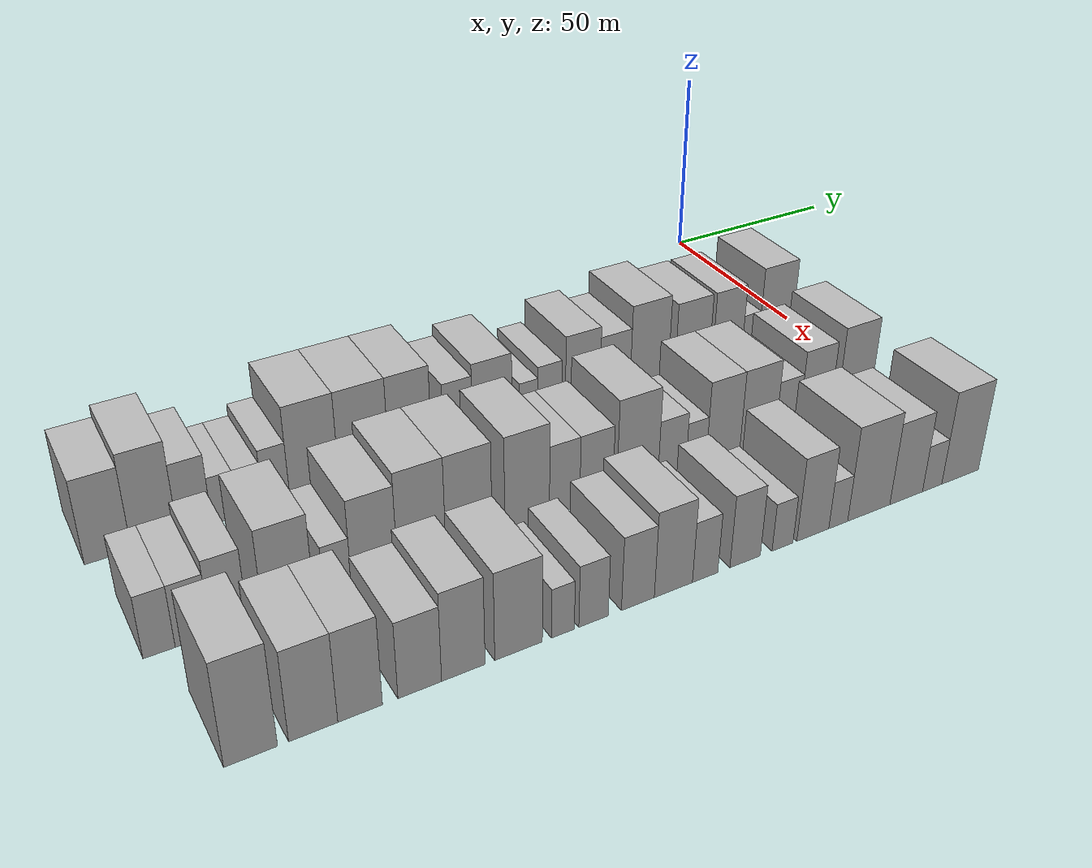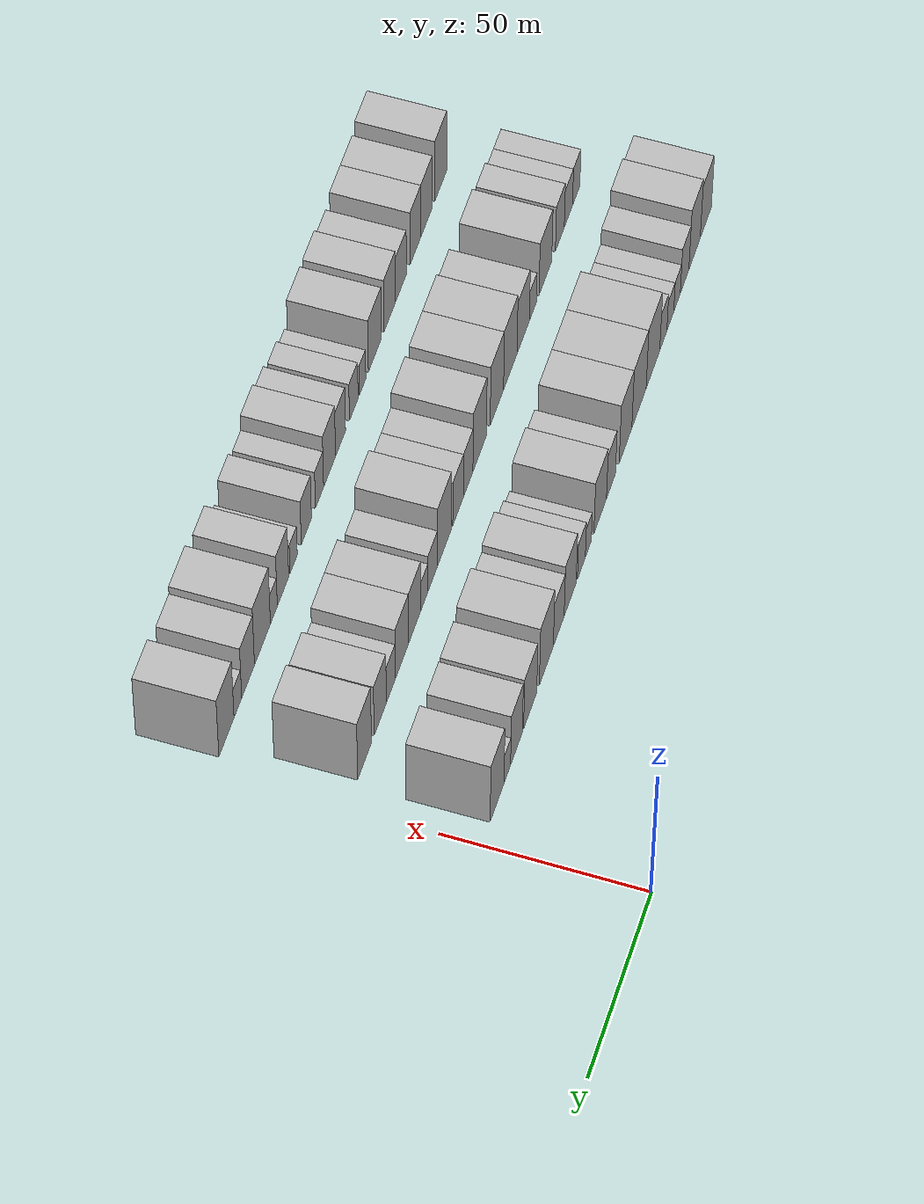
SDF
<sdf version="1.6">
 <world name="default">
  <model name="building_20">
   <static>1</static>
   <pose>50.0000 -181.8742 0 0.000000 0.000000 0.000000</pose>
   <link name="link">
    <pose>0 0 10.50 0 0 0</pose>
    <collision name="collision"><geometry><box><size>20.0000 9.5747 21.0000</size></box></geometry></collision>
    <visual name="visual">
     <cast_shadows>0</cast_shadows>
     <geometry><box><size>20.0000 9.5747 21.0000</size></box></geometry>
     <material>
      <script>
       <uri>model://HANNAS_wall/materials/scripts</uri>
       <uri>model://HANNAS_wall/materials/textures</uri>
       <name>vrc/HANNAS_wall</name>
      </script>
     </material>
    </visual>
   </link>
  </model>
  <model name="building_21">
   <static>1</static>
   <pose>50.0000 -172.2154 0 0.000000 0.000000 0.000000</pose>
   <link name="link">
    <pose>0 0 12.00 0 0 0</pose>
    <collision name="collision"><geometry><box><size>20.0000 9.7429 24.0000</size></box></geometry></collision>
    <visual name="visual">
     <cast_shadows>0</cast_shadows>
     <geometry><box><size>20.0000 9.7429 24.0000</size></box></geometry>
     <material>
      <script>
       <uri>model://HANNAS_wall/materials/scripts</uri>
       <uri>model://HANNAS_wall/materials/textures</uri>
       <name>vrc/HANNAS_wall</name>
      </script>
     </material>
    </visual>
   </link>
  </model>
  <model name="building_22">
   <static>1</static>
   <pose>50.0000 -163.6782 0 0.000000 0.000000 0.000000</pose>
   <link name="link">
    <pose>0 0 9.00 0 0 0</pose>
    <collision name="collision"><geometry><box><size>20.0000 7.3314 18.0000</size></box></geometry></collision>
    <visual name="visual">
     <cast_shadows>0</cast_shadows>
     <geometry><box><size>20.0000 7.3314 18.0000</size></box></geometry>
     <material>
      <script>
       <uri>model://HANNAS_wall/materials/scripts</uri>
       <uri>model://HANNAS_wall/materials/textures</uri>
       <name>vrc/HANNAS_wall</name>
      </script>
     </material>
    </visual>
   </link>
  </model>
  <model name="building_23">
   <static>1</static>
   <pose>50.0000 -157.2608 0 0.000000 0.000000 0.000000</pose>
   <link name="link">
    <pose>0 0 6.00 0 0 0</pose>
    <collision name="collision"><geometry><box><size>20.0000 5.5035 12.0000</size></box></geometry></collision>
    <visual name="visual">
     <cast_shadows>0</cast_shadows>
     <geometry><box><size>20.0000 5.5035 12.0000</size></box></geometry>
     <material>
      <script>
       <uri>model://HANNAS_wall/materials/scripts</uri>
       <uri>model://HANNAS_wall/materials/textures</uri>
       <name>vrc/HANNAS_wall</name>
      </script>
     </material>
    </visual>
   </link>
  </model>
  <model name="building_24">
   <static>1</static>
   <pose>50.0000 -151.6057 0 0.000000 0.000000 0.000000</pose>
   <link name="link">
    <pose>0 0 6.00 0 0 0</pose>
    <collision name="collision"><geometry><box><size>20.0000 5.8067 12.0000</size></box></geometry></collision>
    <visual name="visual">
     <cast_shadows>0</cast_shadows>
     <geometry><box><size>20.0000 5.8067 12.0000</size></box></geometry>
     <material>
      <script>
       <uri>model://HANNAS_wall/materials/scripts</uri>
       <uri>model://HANNAS_wall/materials/textures</uri>
       <name>vrc/HANNAS_wall</name>
      </script>
     </material>
    </visual>
   </link>
  </model>
  <model name="building_25">
   <static>1</static>
   <pose>50.0000 -145.6941 0 0.000000 0.000000 0.000000</pose>
   <link name="link">
    <pose>0 0 7.50 0 0 0</pose>
    <collision name="collision"><geometry><box><size>20.0000 6.0165 15.0000</size></box></geometry></collision>
    <visual name="visual">
     <cast_shadows>0</cast_shadows>
     <geometry><box><size>20.0000 6.0165 15.0000</size></box></geometry>
     <material>
      <script>
       <uri>model://HANNAS_wall/materials/scripts</uri>
       <uri>model://HANNAS_wall/materials/textures</uri>
       <name>vrc/HANNAS_wall</name>
      </script>
     </material>
    </visual>
   </link>
  </model>
  <model name="building_26">
   <static>1</static>
   <pose>50.0000 -136.9792 0 0.000000 0.000000 0.000000</pose>
   <link name="link">
    <pose>0 0 12.00 0 0 0</pose>
    <collision name="collision"><geometry><box><size>20.0000 11.4132 24.0000</size></box></geometry></collision>
    <visual name="visual">
     <cast_shadows>0</cast_shadows>
     <geometry><box><size>20.0000 11.4132 24.0000</size></box></geometry>
     <material>
      <script>
       <uri>model://HANNAS_wall/materials/scripts</uri>
       <uri>model://HANNAS_wall/materials/textures</uri>
       <name>vrc/HANNAS_wall</name>
      </script>
     </material>
    </visual>
   </link>
  </model>
  <model name="building_27">
   <static>1</static>
   <pose>50.0000 -125.3124 0 0.000000 0.000000 0.000000</pose>
   <link name="link">
    <pose>0 0 12.00 0 0 0</pose>
    <collision name="collision"><geometry><box><size>20.0000 11.9204 24.0000</size></box></geometry></collision>
    <visual name="visual">
     <cast_shadows>0</cast_shadows>
     <geometry><box><size>20.0000 11.9204 24.0000</size></box></geometry>
     <material>
      <script>
       <uri>model://HANNAS_wall/materials/scripts</uri>
       <uri>model://HANNAS_wall/materials/textures</uri>
       <name>vrc/HANNAS_wall</name>
      </script>
     </material>
    </visual>
   </link>
  </model>
  <model name="building_28">
   <static>1</static>
   <pose>50.0000 -114.1023 0 0.000000 0.000000 0.000000</pose>
   <link name="link">
    <pose>0 0 12.00 0 0 0</pose>
    <collision name="collision"><geometry><box><size>20.0000 10.4998 24.0000</size></box></geometry></collision>
    <visual name="visual">
     <cast_shadows>0</cast_shadows>
     <geometry><box><size>20.0000 10.4998 24.0000</size></box></geometry>
     <material>
      <script>
       <uri>model://HANNAS_wall/materials/scripts</uri>
       <uri>model://HANNAS_wall/materials/textures</uri>
       <name>vrc/HANNAS_wall</name>
      </script>
     </material>
    </visual>
   </link>
  </model>
  <model name="building_29">
   <static>1</static>
   <pose>50.0000 -102.1703 0 0.000000 0.000000 0.000000</pose>
   <link name="link">
    <pose>0 0 9.00 0 0 0</pose>
    <collision name="collision"><geometry><box><size>20.0000 7.3641 18.0000</size></box></geometry></collision>
    <visual name="visual">
     <cast_shadows>0</cast_shadows>
     <geometry><box><size>20.0000 7.3641 18.0000</size></box></geometry>
     <material>
      <script>
       <uri>model://HANNAS_wall/materials/scripts</uri>
       <uri>model://HANNAS_wall/materials/textures</uri>
       <name>vrc/HANNAS_wall</name>
      </script>
     </material>
    </visual>
   </link>
  </model>
  <model name="building_30">
   <static>1</static>
   <pose>50.0000 -93.3679 0 0.000000 0.000000 0.000000</pose>
   <link name="link">
    <pose>0 0 10.50 0 0 0</pose>
    <collision name="collision"><geometry><box><size>20.0000 10.2407 21.0000</size></box></geometry></collision>
    <visual name="visual">
     <cast_shadows>0</cast_shadows>
     <geometry><box><size>20.0000 10.2407 21.0000</size></box></geometry>
     <material>
      <script>
       <uri>model://HANNAS_wall/materials/scripts</uri>
       <uri>model://HANNAS_wall/materials/textures</uri>
       <name>vrc/HANNAS_wall</name>
      </script>
     </material>
    </visual>
   </link>
  </model>
  <model name="building_31">
   <static>1</static>
   <pose>50.0000 -83.7968 0 0.000000 0.000000 0.000000</pose>
   <link name="link">
    <pose>0 0 6.00 0 0 0</pose>
    <collision name="collision"><geometry><box><size>20.0000 4.9016 12.0000</size></box></geometry></collision>
    <visual name="visual">
     <cast_shadows>0</cast_shadows>
     <geometry><box><size>20.0000 4.9016 12.0000</size></box></geometry>
     <material>
      <script>
       <uri>model://HANNAS_wall/materials/scripts</uri>
       <uri>model://HANNAS_wall/materials/textures</uri>
       <name>vrc/HANNAS_wall</name>
      </script>
     </material>
    </visual>
   </link>
  </model>
  <model name="building_32">
   <static>1</static>
   <pose>50.0000 -78.1430 0 0.000000 0.000000 0.000000</pose>
   <link name="link">
    <pose>0 0 7.50 0 0 0</pose>
    <collision name="collision"><geometry><box><size>20.0000 6.4060 15.0000</size></box></geometry></collision>
    <visual name="visual">
     <cast_shadows>0</cast_shadows>
     <geometry><box><size>20.0000 6.4060 15.0000</size></box></geometry>
     <material>
      <script>
       <uri>model://HANNAS_wall/materials/scripts</uri>
       <uri>model://HANNAS_wall/materials/textures</uri>
       <name>vrc/HANNAS_wall</name>
      </script>
     </material>
    </visual>
   </link>
  </model>
  <model name="building_33">
   <static>1</static>
   <pose>50.0000 -69.1517 0 0.000000 0.000000 0.000000</pose>
   <link name="link">
    <pose>0 0 10.50 0 0 0</pose>
    <collision name="collision"><geometry><box><size>20.0000 9.5765 21.0000</size></box></geometry></collision>
    <visual name="visual">
     <cast_shadows>0</cast_shadows>
     <geometry><box><size>20.0000 9.5765 21.0000</size></box></geometry>
     <material>
      <script>
       <uri>model://HANNAS_wall/materials/scripts</uri>
       <uri>model://HANNAS_wall/materials/textures</uri>
       <name>vrc/HANNAS_wall</name>
      </script>
     </material>
    </visual>
   </link>
  </model>
  <model name="building_34">
   <static>1</static>
   <pose>50.0000 -60.0749 0 0.000000 0.000000 0.000000</pose>
   <link name="link">
    <pose>0 0 9.00 0 0 0</pose>
    <collision name="collision"><geometry><box><size>20.0000 8.5772 18.0000</size></box></geometry></collision>
    <visual name="visual">
     <cast_shadows>0</cast_shadows>
     <geometry><box><size>20.0000 8.5772 18.0000</size></box></geometry>
     <material>
      <script>
       <uri>model://HANNAS_wall/materials/scripts</uri>
       <uri>model://HANNAS_wall/materials/textures</uri>
       <name>vrc/HANNAS_wall</name>
      </script>
     </material>
    </visual>
   </link>
  </model>
  <model name="building_35">
   <static>1</static>
   <pose>50.0000 -50.2443 0 0.000000 0.000000 0.000000</pose>
   <link name="link">
    <pose>0 0 12.00 0 0 0</pose>
    <collision name="collision"><geometry><box><size>20.0000 11.0839 24.0000</size></box></geometry></collision>
    <visual name="visual">
     <cast_shadows>0</cast_shadows>
     <geometry><box><size>20.0000 11.0839 24.0000</size></box></geometry>
     <material>
      <script>
       <uri>model://HANNAS_wall/materials/scripts</uri>
       <uri>model://HANNAS_wall/materials/textures</uri>
       <name>vrc/HANNAS_wall</name>
      </script>
     </material>
    </visual>
   </link>
  </model>
  <model name="building_36">
   <static>1</static>
   <pose>50.0000 -37.5665 0 0.000000 0.000000 0.000000</pose>
   <link name="link">
    <pose>0 0 10.50 0 0 0</pose>
    <collision name="collision"><geometry><box><size>20.0000 10.2716 21.0000</size></box></geometry></collision>
    <visual name="visual">
     <cast_shadows>0</cast_shadows>
     <geometry><box><size>20.0000 10.2716 21.0000</size></box></geometry>
     <material>
      <script>
       <uri>model://HANNAS_wall/materials/scripts</uri>
       <uri>model://HANNAS_wall/materials/textures</uri>
       <name>vrc/HANNAS_wall</name>
      </script>
     </material>
    </visual>
   </link>
  </model>
  <model name="building_37">
   <static>1</static>
   <pose>50.0000 -26.8635 0 0.000000 0.000000 0.000000</pose>
   <link name="link">
    <pose>0 0 10.50 0 0 0</pose>
    <collision name="collision"><geometry><box><size>20.0000 9.1346 21.0000</size></box></geometry></collision>
    <visual name="visual">
     <cast_shadows>0</cast_shadows>
     <geometry><box><size>20.0000 9.1346 21.0000</size></box></geometry>
     <material>
      <script>
       <uri>model://HANNAS_wall/materials/scripts</uri>
       <uri>model://HANNAS_wall/materials/textures</uri>
       <name>vrc/HANNAS_wall</name>
      </script>
     </material>
    </visual>
   </link>
  </model>
  <model name="building_38">
   <static>1</static>
   <pose>50.0000 -19.7377 0 0.000000 0.000000 0.000000</pose>
   <link name="link">
    <pose>0 0 6.00 0 0 0</pose>
    <collision name="collision"><geometry><box><size>20.0000 5.1169 12.0000</size></box></geometry></collision>
    <visual name="visual">
     <cast_shadows>0</cast_shadows>
     <geometry><box><size>20.0000 5.1169 12.0000</size></box></geometry>
     <material>
      <script>
       <uri>model://HANNAS_wall/materials/scripts</uri>
       <uri>model://HANNAS_wall/materials/textures</uri>
       <name>vrc/HANNAS_wall</name>
      </script>
     </material>
    </visual>
   </link>
  </model>
  <model name="building_39">
   <static>1</static>
   <pose>50.0000 -11.8805 0 0.000000 0.000000 0.000000</pose>
   <link name="link">
    <pose>0 0 12.00 0 0 0</pose>
    <collision name="collision"><geometry><box><size>20.0000 10.5976 24.0000</size></box></geometry></collision>
    <visual name="visual">
     <cast_shadows>0</cast_shadows>
     <geometry><box><size>20.0000 10.5976 24.0000</size></box></geometry>
     <material>
      <script>
       <uri>model://HANNAS_wall/materials/scripts</uri>
       <uri>model://HANNAS_wall/materials/textures</uri>
       <name>vrc/HANNAS_wall</name>
      </script>
     </material>
    </visual>
   </link>
  </model>
  <model name="building_96">
   <static>1</static>
   <pose>82.0000 -180.2418 0 0.000000 0.000000 0.000000</pose>
   <link name="link">
    <pose>0 0 7.50 0 0 0</pose>
    <collision name="collision"><geometry><box><size>20.0000 6.1086 15.0000</size></box></geometry></collision>
    <visual name="visual">
     <cast_shadows>0</cast_shadows>
     <geometry><box><size>20.0000 6.1086 15.0000</size></box></geometry>
     <material>
      <script>
       <uri>model://HANNAS_wall/materials/scripts</uri>
       <uri>model://HANNAS_wall/materials/textures</uri>
       <name>vrc/HANNAS_wall</name>
      </script>
     </material>
    </visual>
   </link>
  </model>
  <model name="building_97">
   <static>1</static>
   <pose>82.0000 -173.7613 0 0.000000 0.000000 0.000000</pose>
   <link name="link">
    <pose>0 0 7.50 0 0 0</pose>
    <collision name="collision"><geometry><box><size>20.0000 6.8523 15.0000</size></box></geometry></collision>
    <visual name="visual">
     <cast_shadows>0</cast_shadows>
     <geometry><box><size>20.0000 6.8523 15.0000</size></box></geometry>
     <material>
      <script>
       <uri>model://HANNAS_wall/materials/scripts</uri>
       <uri>model://HANNAS_wall/materials/textures</uri>
       <name>vrc/HANNAS_wall</name>
      </script>
     </material>
    </visual>
   </link>
  </model>
  <model name="building_98">
   <static>1</static>
   <pose>82.0000 -166.6548 0 0.000000 0.000000 0.000000</pose>
   <link name="link">
    <pose>0 0 9.00 0 0 0</pose>
    <collision name="collision"><geometry><box><size>20.0000 7.3609 18.0000</size></box></geometry></collision>
    <visual name="visual">
     <cast_shadows>0</cast_shadows>
     <geometry><box><size>20.0000 7.3609 18.0000</size></box></geometry>
     <material>
      <script>
       <uri>model://HANNAS_wall/materials/scripts</uri>
       <uri>model://HANNAS_wall/materials/textures</uri>
       <name>vrc/HANNAS_wall</name>
      </script>
     </material>
    </visual>
   </link>
  </model>
  <model name="building_99">
   <static>1</static>
   <pose>82.0000 -154.7380 0 0.000000 0.000000 0.000000</pose>
   <link name="link">
    <pose>0 0 10.50 0 0 0</pose>
    <collision name="collision"><geometry><box><size>20.0000 10.4727 21.0000</size></box></geometry></collision>
    <visual name="visual">
     <cast_shadows>0</cast_shadows>
     <geometry><box><size>20.0000 10.4727 21.0000</size></box></geometry>
     <material>
      <script>
       <uri>model://HANNAS_wall/materials/scripts</uri>
       <uri>model://HANNAS_wall/materials/textures</uri>
       <name>vrc/HANNAS_wall</name>
      </script>
     </material>
    </visual>
   </link>
  </model>
  <model name="building_100">
   <static>1</static>
   <pose>82.0000 -144.5510 0 0.000000 0.000000 0.000000</pose>
   <link name="link">
    <pose>0 0 6.00 0 0 0</pose>
    <collision name="collision"><geometry><box><size>20.0000 5.9012 12.0000</size></box></geometry></collision>
    <visual name="visual">
     <cast_shadows>0</cast_shadows>
     <geometry><box><size>20.0000 5.9012 12.0000</size></box></geometry>
     <material>
      <script>
       <uri>model://HANNAS_wall/materials/scripts</uri>
       <uri>model://HANNAS_wall/materials/textures</uri>
       <name>vrc/HANNAS_wall</name>
      </script>
     </material>
    </visual>
   </link>
  </model>
  <model name="building_101">
   <static>1</static>
   <pose>82.0000 -136.6147 0 0.000000 0.000000 0.000000</pose>
   <link name="link">
    <pose>0 0 10.50 0 0 0</pose>
    <collision name="collision"><geometry><box><size>20.0000 9.9715 21.0000</size></box></geometry></collision>
    <visual name="visual">
     <cast_shadows>0</cast_shadows>
     <geometry><box><size>20.0000 9.9715 21.0000</size></box></geometry>
     <material>
      <script>
       <uri>model://HANNAS_wall/materials/scripts</uri>
       <uri>model://HANNAS_wall/materials/textures</uri>
       <name>vrc/HANNAS_wall</name>
      </script>
     </material>
    </visual>
   </link>
  </model>
  <model name="building_102">
   <static>1</static>
   <pose>82.0000 -126.2194 0 0.000000 0.000000 0.000000</pose>
   <link name="link">
    <pose>0 0 12.00 0 0 0</pose>
    <collision name="collision"><geometry><box><size>20.0000 10.8189 24.0000</size></box></geometry></collision>
    <visual name="visual">
     <cast_shadows>0</cast_shadows>
     <geometry><box><size>20.0000 10.8189 24.0000</size></box></geometry>
     <material>
      <script>
       <uri>model://HANNAS_wall/materials/scripts</uri>
       <uri>model://HANNAS_wall/materials/textures</uri>
       <name>vrc/HANNAS_wall</name>
      </script>
     </material>
    </visual>
   </link>
  </model>
  <model name="building_103">
   <static>1</static>
   <pose>82.0000 -115.4729 0 0.000000 0.000000 0.000000</pose>
   <link name="link">
    <pose>0 0 12.00 0 0 0</pose>
    <collision name="collision"><geometry><box><size>20.0000 10.6742 24.0000</size></box></geometry></collision>
    <visual name="visual">
     <cast_shadows>0</cast_shadows>
     <geometry><box><size>20.0000 10.6742 24.0000</size></box></geometry>
     <material>
      <script>
       <uri>model://HANNAS_wall/materials/scripts</uri>
       <uri>model://HANNAS_wall/materials/textures</uri>
       <name>vrc/HANNAS_wall</name>
      </script>
     </material>
    </visual>
   </link>
  </model>
  <model name="building_104">
   <static>1</static>
   <pose>82.0000 -101.7848 0 0.000000 0.000000 0.000000</pose>
   <link name="link">
    <pose>0 0 12.00 0 0 0</pose>
    <collision name="collision"><geometry><box><size>20.0000 10.7020 24.0000</size></box></geometry></collision>
    <visual name="visual">
     <cast_shadows>0</cast_shadows>
     <geometry><box><size>20.0000 10.7020 24.0000</size></box></geometry>
     <material>
      <script>
       <uri>model://HANNAS_wall/materials/scripts</uri>
       <uri>model://HANNAS_wall/materials/textures</uri>
       <name>vrc/HANNAS_wall</name>
      </script>
     </material>
    </visual>
   </link>
  </model>
  <model name="building_105">
   <static>1</static>
   <pose>82.0000 -92.6926 0 0.000000 0.000000 0.000000</pose>
   <link name="link">
    <pose>0 0 9.00 0 0 0</pose>
    <collision name="collision"><geometry><box><size>20.0000 7.4823 18.0000</size></box></geometry></collision>
    <visual name="visual">
     <cast_shadows>0</cast_shadows>
     <geometry><box><size>20.0000 7.4823 18.0000</size></box></geometry>
     <material>
      <script>
       <uri>model://HANNAS_wall/materials/scripts</uri>
       <uri>model://HANNAS_wall/materials/textures</uri>
       <name>vrc/HANNAS_wall</name>
      </script>
     </material>
    </visual>
   </link>
  </model>
  <model name="building_106">
   <static>1</static>
   <pose>82.0000 -84.7755 0 0.000000 0.000000 0.000000</pose>
   <link name="link">
    <pose>0 0 9.00 0 0 0</pose>
    <collision name="collision"><geometry><box><size>20.0000 8.3520 18.0000</size></box></geometry></collision>
    <visual name="visual">
     <cast_shadows>0</cast_shadows>
     <geometry><box><size>20.0000 8.3520 18.0000</size></box></geometry>
     <material>
      <script>
       <uri>model://HANNAS_wall/materials/scripts</uri>
       <uri>model://HANNAS_wall/materials/textures</uri>
       <name>vrc/HANNAS_wall</name>
      </script>
     </material>
    </visual>
   </link>
  </model>
  <model name="building_107">
   <static>1</static>
   <pose>82.0000 -74.2154 0 0.000000 0.000000 0.000000</pose>
   <link name="link">
    <pose>0 0 12.00 0 0 0</pose>
    <collision name="collision"><geometry><box><size>20.0000 10.7682 24.0000</size></box></geometry></collision>
    <visual name="visual">
     <cast_shadows>0</cast_shadows>
     <geometry><box><size>20.0000 10.7682 24.0000</size></box></geometry>
     <material>
      <script>
       <uri>model://HANNAS_wall/materials/scripts</uri>
       <uri>model://HANNAS_wall/materials/textures</uri>
       <name>vrc/HANNAS_wall</name>
      </script>
     </material>
    </visual>
   </link>
  </model>
  <model name="building_108">
   <static>1</static>
   <pose>82.0000 -65.1127 0 0.000000 0.000000 0.000000</pose>
   <link name="link">
    <pose>0 0 7.50 0 0 0</pose>
    <collision name="collision"><geometry><box><size>20.0000 7.4371 15.0000</size></box></geometry></collision>
    <visual name="visual">
     <cast_shadows>0</cast_shadows>
     <geometry><box><size>20.0000 7.4371 15.0000</size></box></geometry>
     <material>
      <script>
       <uri>model://HANNAS_wall/materials/scripts</uri>
       <uri>model://HANNAS_wall/materials/textures</uri>
       <name>vrc/HANNAS_wall</name>
      </script>
     </material>
    </visual>
   </link>
  </model>
  <model name="building_109">
   <static>1</static>
   <pose>82.0000 -58.6278 0 0.000000 0.000000 0.000000</pose>
   <link name="link">
    <pose>0 0 6.00 0 0 0</pose>
    <collision name="collision"><geometry><box><size>20.0000 5.5326 12.0000</size></box></geometry></collision>
    <visual name="visual">
     <cast_shadows>0</cast_shadows>
     <geometry><box><size>20.0000 5.5326 12.0000</size></box></geometry>
     <material>
      <script>
       <uri>model://HANNAS_wall/materials/scripts</uri>
       <uri>model://HANNAS_wall/materials/textures</uri>
       <name>vrc/HANNAS_wall</name>
      </script>
     </material>
    </visual>
   </link>
  </model>
  <model name="building_110">
   <static>1</static>
   <pose>82.0000 -51.1802 0 0.000000 0.000000 0.000000</pose>
   <link name="link">
    <pose>0 0 10.50 0 0 0</pose>
    <collision name="collision"><geometry><box><size>20.0000 9.3626 21.0000</size></box></geometry></collision>
    <visual name="visual">
     <cast_shadows>0</cast_shadows>
     <geometry><box><size>20.0000 9.3626 21.0000</size></box></geometry>
     <material>
      <script>
       <uri>model://HANNAS_wall/materials/scripts</uri>
       <uri>model://HANNAS_wall/materials/textures</uri>
       <name>vrc/HANNAS_wall</name>
      </script>
     </material>
    </visual>
   </link>
  </model>
  <model name="building_111">
   <static>1</static>
   <pose>82.0000 -41.4585 0 0.000000 0.000000 0.000000</pose>
   <link name="link">
    <pose>0 0 10.50 0 0 0</pose>
    <collision name="collision"><geometry><box><size>20.0000 10.0808 21.0000</size></box></geometry></collision>
    <visual name="visual">
     <cast_shadows>0</cast_shadows>
     <geometry><box><size>20.0000 10.0808 21.0000</size></box></geometry>
     <material>
      <script>
       <uri>model://HANNAS_wall/materials/scripts</uri>
       <uri>model://HANNAS_wall/materials/textures</uri>
       <name>vrc/HANNAS_wall</name>
      </script>
     </material>
    </visual>
   </link>
  </model>
  <model name="building_112">
   <static>1</static>
   <pose>82.0000 -33.0310 0 0.000000 0.000000 0.000000</pose>
   <link name="link">
    <pose>0 0 7.50 0 0 0</pose>
    <collision name="collision"><geometry><box><size>20.0000 6.7742 15.0000</size></box></geometry></collision>
    <visual name="visual">
     <cast_shadows>0</cast_shadows>
     <geometry><box><size>20.0000 6.7742 15.0000</size></box></geometry>
     <material>
      <script>
       <uri>model://HANNAS_wall/materials/scripts</uri>
       <uri>model://HANNAS_wall/materials/textures</uri>
       <name>vrc/HANNAS_wall</name>
      </script>
     </material>
    </visual>
   </link>
  </model>
  <model name="building_113">
   <static>1</static>
   <pose>82.0000 -25.0526 0 0.000000 0.000000 0.000000</pose>
   <link name="link">
    <pose>0 0 10.50 0 0 0</pose>
    <collision name="collision"><geometry><box><size>20.0000 9.1827 21.0000</size></box></geometry></collision>
    <visual name="visual">
     <cast_shadows>0</cast_shadows>
     <geometry><box><size>20.0000 9.1827 21.0000</size></box></geometry>
     <material>
      <script>
       <uri>model://HANNAS_wall/materials/scripts</uri>
       <uri>model://HANNAS_wall/materials/textures</uri>
       <name>vrc/HANNAS_wall</name>
      </script>
     </material>
    </visual>
   </link>
  </model>
  <model name="building_114">
   <static>1</static>
   <pose>82.0000 -13.3316 0 0.000000 0.000000 0.000000</pose>
   <link name="link">
    <pose>0 0 12.00 0 0 0</pose>
    <collision name="collision"><geometry><box><size>20.0000 10.2594 24.0000</size></box></geometry></collision>
    <visual name="visual">
     <cast_shadows>0</cast_shadows>
     <geometry><box><size>20.0000 10.2594 24.0000</size></box></geometry>
     <material>
      <script>
       <uri>model://HANNAS_wall/materials/scripts</uri>
       <uri>model://HANNAS_wall/materials/textures</uri>
       <name>vrc/HANNAS_wall</name>
      </script>
     </material>
    </visual>
   </link>
  </model>
  <model name="building_173">
   <static>1</static>
   <pose>114.0000 -173.3415 0 0.000000 0.000000 0.000000</pose>
   <link name="link">
    <pose>0 0 12.00 0 0 0</pose>
    <collision name="collision"><geometry><box><size>20.0000 9.6094 24.0000</size></box></geometry></collision>
    <visual name="visual">
     <cast_shadows>0</cast_shadows>
     <geometry><box><size>20.0000 9.6094 24.0000</size></box></geometry>
     <material>
      <script>
       <uri>model://HANNAS_wall/materials/scripts</uri>
       <uri>model://HANNAS_wall/materials/textures</uri>
       <name>vrc/HANNAS_wall</name>
      </script>
     </material>
    </visual>
   </link>
  </model>
  <model name="building_174">
   <static>1</static>
   <pose>114.0000 -161.9735 0 0.000000 0.000000 0.000000</pose>
   <link name="link">
    <pose>0 0 10.50 0 0 0</pose>
    <collision name="collision"><geometry><box><size>20.0000 9.1265 21.0000</size></box></geometry></collision>
    <visual name="visual">
     <cast_shadows>0</cast_shadows>
     <geometry><box><size>20.0000 9.1265 21.0000</size></box></geometry>
     <material>
      <script>
       <uri>model://HANNAS_wall/materials/scripts</uri>
       <uri>model://HANNAS_wall/materials/textures</uri>
       <name>vrc/HANNAS_wall</name>
      </script>
     </material>
    </visual>
   </link>
  </model>
  <model name="building_175">
   <static>1</static>
   <pose>114.0000 -153.1427 0 0.000000 0.000000 0.000000</pose>
   <link name="link">
    <pose>0 0 10.50 0 0 0</pose>
    <collision name="collision"><geometry><box><size>20.0000 8.5351 21.0000</size></box></geometry></collision>
    <visual name="visual">
     <cast_shadows>0</cast_shadows>
     <geometry><box><size>20.0000 8.5351 21.0000</size></box></geometry>
     <material>
      <script>
       <uri>model://HANNAS_wall/materials/scripts</uri>
       <uri>model://HANNAS_wall/materials/textures</uri>
       <name>vrc/HANNAS_wall</name>
      </script>
     </material>
    </visual>
   </link>
  </model>
  <model name="building_176">
   <static>1</static>
   <pose>114.0000 -141.5295 0 0.000000 0.000000 0.000000</pose>
   <link name="link">
    <pose>0 0 9.00 0 0 0</pose>
    <collision name="collision"><geometry><box><size>20.0000 8.6913 18.0000</size></box></geometry></collision>
    <visual name="visual">
     <cast_shadows>0</cast_shadows>
     <geometry><box><size>20.0000 8.6913 18.0000</size></box></geometry>
     <material>
      <script>
       <uri>model://HANNAS_wall/materials/scripts</uri>
       <uri>model://HANNAS_wall/materials/textures</uri>
       <name>vrc/HANNAS_wall</name>
      </script>
     </material>
    </visual>
   </link>
  </model>
  <model name="building_177">
   <static>1</static>
   <pose>114.0000 -132.7269 0 0.000000 0.000000 0.000000</pose>
   <link name="link">
    <pose>0 0 10.50 0 0 0</pose>
    <collision name="collision"><geometry><box><size>20.0000 8.9140 21.0000</size></box></geometry></collision>
    <visual name="visual">
     <cast_shadows>0</cast_shadows>
     <geometry><box><size>20.0000 8.9140 21.0000</size></box></geometry>
     <material>
      <script>
       <uri>model://HANNAS_wall/materials/scripts</uri>
       <uri>model://HANNAS_wall/materials/textures</uri>
       <name>vrc/HANNAS_wall</name>
      </script>
     </material>
    </visual>
   </link>
  </model>
  <model name="building_178">
   <static>1</static>
   <pose>114.0000 -121.2069 0 0.000000 0.000000 0.000000</pose>
   <link name="link">
    <pose>0 0 10.50 0 0 0</pose>
    <collision name="collision"><geometry><box><size>20.0000 10.1259 21.0000</size></box></geometry></collision>
    <visual name="visual">
     <cast_shadows>0</cast_shadows>
     <geometry><box><size>20.0000 10.1259 21.0000</size></box></geometry>
     <material>
      <script>
       <uri>model://HANNAS_wall/materials/scripts</uri>
       <uri>model://HANNAS_wall/materials/textures</uri>
       <name>vrc/HANNAS_wall</name>
      </script>
     </material>
    </visual>
   </link>
  </model>
  <model name="building_179">
   <static>1</static>
   <pose>114.0000 -111.6433 0 0.000000 0.000000 0.000000</pose>
   <link name="link">
    <pose>0 0 6.00 0 0 0</pose>
    <collision name="collision"><geometry><box><size>20.0000 5.0013 12.0000</size></box></geometry></collision>
    <visual name="visual">
     <cast_shadows>0</cast_shadows>
     <geometry><box><size>20.0000 5.0013 12.0000</size></box></geometry>
     <material>
      <script>
       <uri>model://HANNAS_wall/materials/scripts</uri>
       <uri>model://HANNAS_wall/materials/textures</uri>
       <name>vrc/HANNAS_wall</name>
      </script>
     </material>
    </visual>
   </link>
  </model>
  <model name="building_180">
   <static>1</static>
   <pose>114.0000 -104.8348 0 0.000000 0.000000 0.000000</pose>
   <link name="link">
    <pose>0 0 7.50 0 0 0</pose>
    <collision name="collision"><geometry><box><size>20.0000 6.6158 15.0000</size></box></geometry></collision>
    <visual name="visual">
     <cast_shadows>0</cast_shadows>
     <geometry><box><size>20.0000 6.6158 15.0000</size></box></geometry>
     <material>
      <script>
       <uri>model://HANNAS_wall/materials/scripts</uri>
       <uri>model://HANNAS_wall/materials/textures</uri>
       <name>vrc/HANNAS_wall</name>
      </script>
     </material>
    </visual>
   </link>
  </model>
  <model name="building_181">
   <static>1</static>
   <pose>114.0000 -94.7182 0 0.000000 0.000000 0.000000</pose>
   <link name="link">
    <pose>0 0 9.00 0 0 0</pose>
    <collision name="collision"><geometry><box><size>20.0000 7.6175 18.0000</size></box></geometry></collision>
    <visual name="visual">
     <cast_shadows>0</cast_shadows>
     <geometry><box><size>20.0000 7.6175 18.0000</size></box></geometry>
     <material>
      <script>
       <uri>model://HANNAS_wall/materials/scripts</uri>
       <uri>model://HANNAS_wall/materials/textures</uri>
       <name>vrc/HANNAS_wall</name>
      </script>
     </material>
    </visual>
   </link>
  </model>
  <model name="building_182">
   <static>1</static>
   <pose>114.0000 -86.3735 0 0.000000 0.000000 0.000000</pose>
   <link name="link">
    <pose>0 0 10.50 0 0 0</pose>
    <collision name="collision"><geometry><box><size>20.0000 9.0717 21.0000</size></box></geometry></collision>
    <visual name="visual">
     <cast_shadows>0</cast_shadows>
     <geometry><box><size>20.0000 9.0717 21.0000</size></box></geometry>
     <material>
      <script>
       <uri>model://HANNAS_wall/materials/scripts</uri>
       <uri>model://HANNAS_wall/materials/textures</uri>
       <name>vrc/HANNAS_wall</name>
      </script>
     </material>
    </visual>
   </link>
  </model>
  <model name="building_183">
   <static>1</static>
   <pose>114.0000 -78.7450 0 0.000000 0.000000 0.000000</pose>
   <link name="link">
    <pose>0 0 7.50 0 0 0</pose>
    <collision name="collision"><geometry><box><size>20.0000 6.1854 15.0000</size></box></geometry></collision>
    <visual name="visual">
     <cast_shadows>0</cast_shadows>
     <geometry><box><size>20.0000 6.1854 15.0000</size></box></geometry>
     <material>
      <script>
       <uri>model://HANNAS_wall/materials/scripts</uri>
       <uri>model://HANNAS_wall/materials/textures</uri>
       <name>vrc/HANNAS_wall</name>
      </script>
     </material>
    </visual>
   </link>
  </model>
  <model name="building_184">
   <static>1</static>
   <pose>114.0000 -68.8336 0 0.000000 0.000000 0.000000</pose>
   <link name="link">
    <pose>0 0 9.00 0 0 0</pose>
    <collision name="collision"><geometry><box><size>20.0000 7.6374 18.0000</size></box></geometry></collision>
    <visual name="visual">
     <cast_shadows>0</cast_shadows>
     <geometry><box><size>20.0000 7.6374 18.0000</size></box></geometry>
     <material>
      <script>
       <uri>model://HANNAS_wall/materials/scripts</uri>
       <uri>model://HANNAS_wall/materials/textures</uri>
       <name>vrc/HANNAS_wall</name>
      </script>
     </material>
    </visual>
   </link>
  </model>
  <model name="building_185">
   <static>1</static>
   <pose>114.0000 -59.3143 0 0.000000 0.000000 0.000000</pose>
   <link name="link">
    <pose>0 0 6.00 0 0 0</pose>
    <collision name="collision"><geometry><box><size>20.0000 5.4012 12.0000</size></box></geometry></collision>
    <visual name="visual">
     <cast_shadows>0</cast_shadows>
     <geometry><box><size>20.0000 5.4012 12.0000</size></box></geometry>
     <material>
      <script>
       <uri>model://HANNAS_wall/materials/scripts</uri>
       <uri>model://HANNAS_wall/materials/textures</uri>
       <name>vrc/HANNAS_wall</name>
      </script>
     </material>
    </visual>
   </link>
  </model>
  <model name="building_186">
   <static>1</static>
   <pose>114.0000 -51.3873 0 0.000000 0.000000 0.000000</pose>
   <link name="link">
    <pose>0 0 10.50 0 0 0</pose>
    <collision name="collision"><geometry><box><size>20.0000 8.4528 21.0000</size></box></geometry></collision>
    <visual name="visual">
     <cast_shadows>0</cast_shadows>
     <geometry><box><size>20.0000 8.4528 21.0000</size></box></geometry>
     <material>
      <script>
       <uri>model://HANNAS_wall/materials/scripts</uri>
       <uri>model://HANNAS_wall/materials/textures</uri>
       <name>vrc/HANNAS_wall</name>
      </script>
     </material>
    </visual>
   </link>
  </model>
  <model name="building_187">
   <static>1</static>
   <pose>114.0000 -44.6030 0 0.000000 0.000000 0.000000</pose>
   <link name="link">
    <pose>0 0 6.00 0 0 0</pose>
    <collision name="collision"><geometry><box><size>20.0000 5.1157 12.0000</size></box></geometry></collision>
    <visual name="visual">
     <cast_shadows>0</cast_shadows>
     <geometry><box><size>20.0000 5.1157 12.0000</size></box></geometry>
     <material>
      <script>
       <uri>model://HANNAS_wall/materials/scripts</uri>
       <uri>model://HANNAS_wall/materials/textures</uri>
       <name>vrc/HANNAS_wall</name>
      </script>
     </material>
    </visual>
   </link>
  </model>
  <model name="building_188">
   <static>1</static>
   <pose>114.0000 -36.2127 0 0.000000 0.000000 0.000000</pose>
   <link name="link">
    <pose>0 0 12.00 0 0 0</pose>
    <collision name="collision"><geometry><box><size>20.0000 11.6649 24.0000</size></box></geometry></collision>
    <visual name="visual">
     <cast_shadows>0</cast_shadows>
     <geometry><box><size>20.0000 11.6649 24.0000</size></box></geometry>
     <material>
      <script>
       <uri>model://HANNAS_wall/materials/scripts</uri>
       <uri>model://HANNAS_wall/materials/textures</uri>
       <name>vrc/HANNAS_wall</name>
      </script>
     </material>
    </visual>
   </link>
  </model>
  <model name="building_189">
   <static>1</static>
   <pose>114.0000 -25.7244 0 0.000000 0.000000 0.000000</pose>
   <link name="link">
    <pose>0 0 10.50 0 0 0</pose>
    <collision name="collision"><geometry><box><size>20.0000 9.3118 21.0000</size></box></geometry></collision>
    <visual name="visual">
     <cast_shadows>0</cast_shadows>
     <geometry><box><size>20.0000 9.3118 21.0000</size></box></geometry>
     <material>
      <script>
       <uri>model://HANNAS_wall/materials/scripts</uri>
       <uri>model://HANNAS_wall/materials/textures</uri>
       <name>vrc/HANNAS_wall</name>
      </script>
     </material>
    </visual>
   </link>
  </model>
  <model name="building_190">
   <static>1</static>
   <pose>114.0000 -18.2666 0 0.000000 0.000000 0.000000</pose>
   <link name="link">
    <pose>0 0 6.00 0 0 0</pose>
    <collision name="collision"><geometry><box><size>20.0000 5.6036 12.0000</size></box></geometry></collision>
    <visual name="visual">
     <cast_shadows>0</cast_shadows>
     <geometry><box><size>20.0000 5.6036 12.0000</size></box></geometry>
     <material>
      <script>
       <uri>model://HANNAS_wall/materials/scripts</uri>
       <uri>model://HANNAS_wall/materials/textures</uri>
       <name>vrc/HANNAS_wall</name>
      </script>
     </material>
    </visual>
   </link>
  </model>
  <model name="building_191">
   <static>1</static>
   <pose>114.0000 -10.0113 0 0.000000 0.000000 0.000000</pose>
   <link name="link">
    <pose>0 0 12.00 0 0 0</pose>
    <collision name="collision"><geometry><box><size>20.0000 10.9070 24.0000</size></box></geometry></collision>
    <visual name="visual">
     <cast_shadows>0</cast_shadows>
     <geometry><box><size>20.0000 10.9070 24.0000</size></box></geometry>
     <material>
      <script>
       <uri>model://HANNAS_wall/materials/scripts</uri>
       <uri>model://HANNAS_wall/materials/textures</uri>
       <name>vrc/HANNAS_wall</name>
      </script>
     </material>
    </visual>
   </link>
  </model>
 </world>
</sdf>
